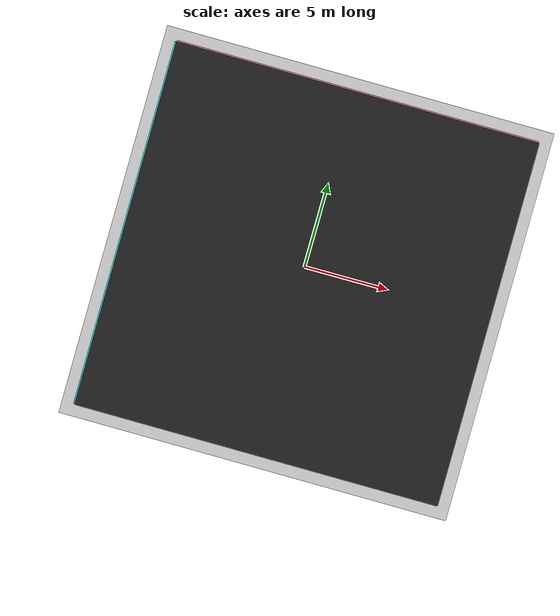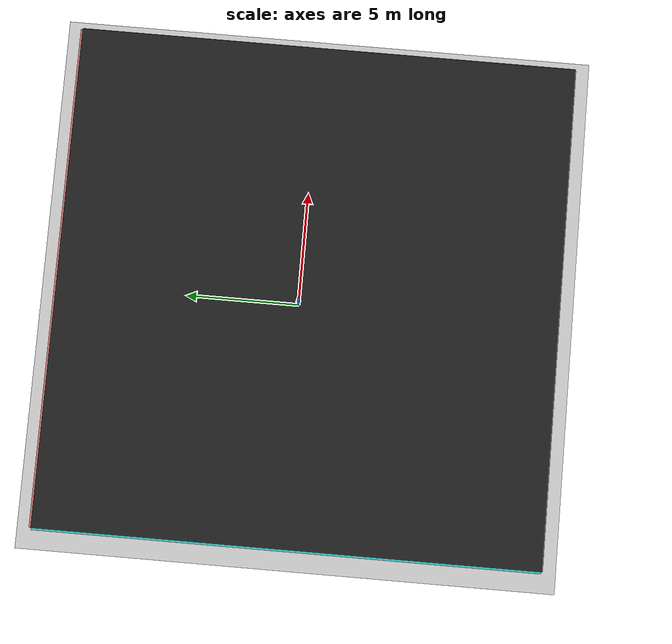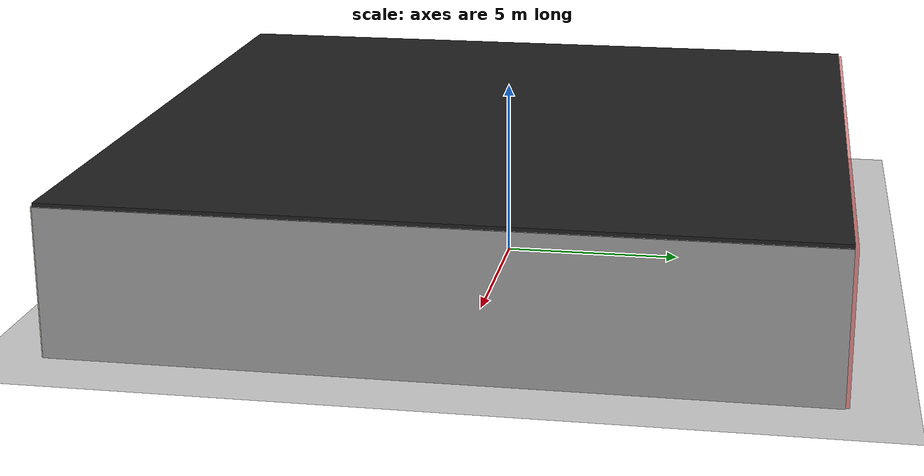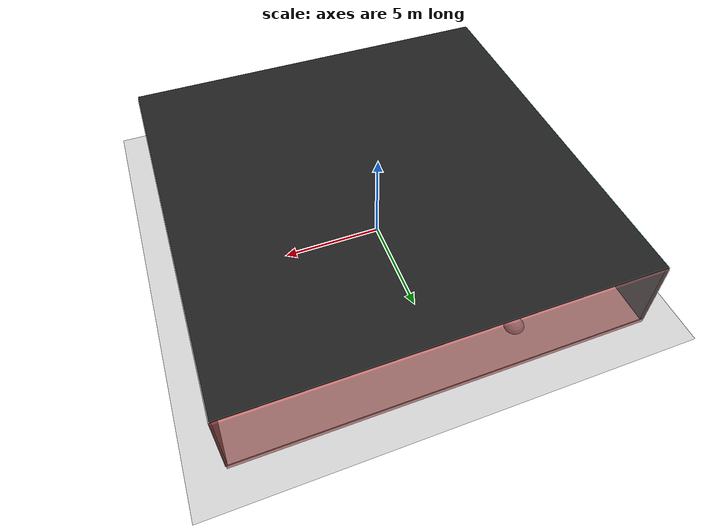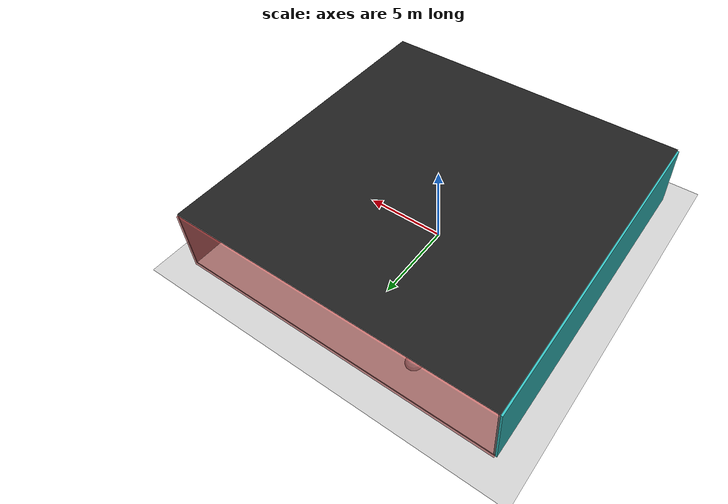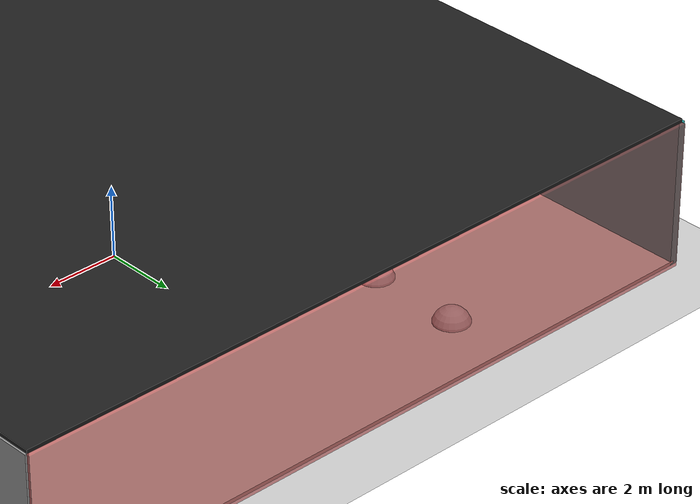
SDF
<sdf version="1.6">
 <world name="default">
  <light name="sun" type="directional">
   <pose>0 0 10 0 -0 0</pose>
   <diffuse>0.8 0.8 0.8 1</diffuse>
   <specular>0.2 0.2 0.2 1</specular>
   <attenuation>
    <range>1000</range>
    <constant>0.9</constant>
    <linear>0.01</linear>
    <quadratic>0.001</quadratic>
   </attenuation>
   <direction>-0.5 0.1 -0.9</direction>
  </light>
  <model name="ground_plane">
   <static>1</static>
   <link name="link">
    <collision name="collision">
     <geometry><plane><normal>0 0 1</normal><size>100 100</size></plane></geometry>
     <surface><friction><ode><mu>100</mu><mu2>50</mu2></ode></friction></surface>
    </collision>
    <visual name="visual">
     <cast_shadows>0</cast_shadows>
     <geometry><plane><normal>0 0 1</normal><size>100 100</size></plane></geometry>
     <material>
      <script><uri>file://media/materials/scripts/gazebo.material</uri><name>Gazebo/Grey</name></script>
     </material>
    </visual>
   </link>
  </model>
  <gravity>0 0 -9.8</gravity>
  <magnetic_field>6e-06 2.3e-05 -4.2e-05</magnetic_field>
  <atmosphere type="adiabatic"/>
  <physics default="0" name="default_physics" type="ode">
   <max_step_size>0.001</max_step_size>
   <real_time_factor>1</real_time_factor>
   <real_time_update_rate>1000</real_time_update_rate>
  </physics>
  <scene><ambient>0.4 0.4 0.4 1</ambient><background>0.7 0.7 0.7 1</background><shadows>1</shadows></scene>
  <spherical_coordinates>
   <surface_model>EARTH_WGS84</surface_model>
   <latitude_deg>0</latitude_deg>
   <longitude_deg>0</longitude_deg>
   <elevation>0</elevation>
   <heading_deg>0</heading_deg>
  </spherical_coordinates>
  <model name="four_walls">
   <static>1</static>
   <link name="Ceiling">
    <collision name="Ceiling_Collision"><geometry><box><size>20 20 0.1</size></box></geometry></collision>
    <visual name="Ceiling_Visual">
     <geometry><box><size>20 20 0.1</size></box></geometry>
     <material>
      <script><uri>file://media/materials/scripts/gazebo.material</uri><name>Gazebo/FlatBlack</name></script>
     </material>
    </visual>
    <pose>0 0 4.05 0 -0 0</pose>
   </link>
   <link name="Wall_South">
    <collision name="Wall_South_Collision">
     <geometry><box><size>20 0.1 4</size></box></geometry>
     <pose>0 0 2 0 -0 0</pose>
    </collision>
    <visual name="Wall_South_Visual">
     <pose>0 0 2 0 -0 0</pose>
     <geometry><box><size>20 0.1 4</size></box></geometry>
     <material>
      <script><uri>file://media/materials/scripts/gazebo.material</uri><name>Gazebo/PaintedWall</name></script>
     </material>
    </visual>
    <velocity_decay><linear>0</linear><angular>0</angular></velocity_decay>
    <pose>0 -10 0 0 -0 0</pose>
   </link>
   <link name="Wall_East">
    <collision name="Wall_21_Collision">
     <geometry><box><size>20 0.1 4</size></box></geometry>
     <pose>0 0 2 0 -0 0</pose>
    </collision>
    <visual name="Wall_21_Visual">
     <pose>0 0 2 0 -0 0</pose>
     <geometry><box><size>20 0.1 4</size></box></geometry>
     <material>
      <script><uri>file://media/materials/scripts/gazebo.material</uri><name>Gazebo/Grey</name></script>
     </material>
    </visual>
    <velocity_decay><linear>0</linear><angular>0</angular></velocity_decay>
    <pose>10 0 0 0 -0 1.5708</pose>
   </link>
   <link name="Wall_North">
    <collision name="Wall_22_Collision">
     <geometry><box><size>20 0.2 4</size></box></geometry>
     <pose>0 0 2 0 -0 0</pose>
    </collision>
    <visual name="Wall_22_Visual">
     <pose>0 0 2 0 -0 0</pose>
     <geometry><box><size>20 0.2 4</size></box></geometry>
     <material>
      <script><uri>file://media/materials/scripts/gazebo.material</uri><name>Gazebo/RedTransparent</name></script>
     </material>
    </visual>
    <velocity_decay><linear>0</linear><angular>0</angular></velocity_decay>
    <pose>0 10 0 0 -0 0</pose>
   </link>
   <link name="Wall_West">
    <collision name="Wall_23_Collision">
     <geometry><box><size>20 0.2 4</size></box></geometry>
     <pose>0 0 2 0 -0 0</pose>
    </collision>
    <visual name="Wall_23_Visual">
     <pose>0 0 2 0 -0 0</pose>
     <geometry><box><size>20 0.2 4</size></box></geometry>
     <material>
      <script><uri>file://media/materials/scripts/gazebo.material</uri><name>Gazebo/TurquoiseGlow</name></script>
     </material>
    </visual>
    <velocity_decay><linear>0</linear><angular>0</angular></velocity_decay>
    <pose>-10 0 0 0 0 -1.5708</pose>
   </link>
   <link name="Ground_link">
    <collision name="collision">
     <pose>0 0 0.05 0 -0 0</pose>
     <geometry><box><size>20 20 0.1</size></box></geometry>
    </collision>
    <visual name="visual">
     <pose>0 0 0.05 0 -0 0</pose>
     <geometry><box><size>20 20 0.1</size></box></geometry>
     <material>
      <script><uri>file://media/materials/scripts/gazebo.material</uri><name>Gazebo/CeilingTiled</name></script>
     </material>
    </visual>
   </link>
   <pose>0.205996 -0.361878 0 0 -0 0</pose>
  </model>
  <include>
   <uri>model://textured_shapes_sphere</uri>
   <pose>-6.97193296383 -6.87326361879 0 0 0 1.34923096209</pose>
  </include>
  <include>
   <uri>model://textured_shapes_box</uri>
   <pose>-3.93734829687 1.87662292664 0 0 0 2.67699474962</pose>
  </include>
  <include>
   <uri>model://textured_shapes_sphere</uri>
   <pose>-3.94147764941 5.19753557752 0 0 0 1.57091729133</pose>
  </include>
  <include>
   <uri>model://textured_shapes_sphere</uri>
   <pose>-3.9033966235 7.86000591878 0 0 0 2.22727800578</pose>
  </include>
  <include>
   <uri>model://textured_shapes_cylinder</uri>
   <pose>4.82545061709 2.17864616659 0 0 0 0.176087939696</pose>
  </include>
  <include>
   <uri>model://textured_shapes_sphere</uri>
   <pose>8.19498181819 -6.8518177699 0 0 0 1.27247114334</pose>
  </include>
  <include><uri>model://bookshelf</uri><pose>7.99205062158 2.06024005445 0 0 0 1.20172647905</pose></include>
 </world>
</sdf>

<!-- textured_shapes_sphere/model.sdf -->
<sdf version="1.6">
  <model name="textured_shapes">
    <pose>0 0 0.5 0 0 0</pose>
    <link name="sphere">
      <collision name="collision">
        <geometry>
          <sphere>
            <radius>0.5</radius>
          </sphere>
        </geometry>
      </collision>
      <visual name="visual">
        <geometry>
          <sphere>
            <radius>0.5</radius>
          </sphere>
        </geometry>
        <material>
          <script>
            <uri>model://textured_shapes/materials/scripts</uri>
            <uri>model://textured_shapes/materials/textures</uri>
            <name>TexturedShape/Squares</name>
          </script>
        </material>
      </visual>
    </link>
  </model>
</sdf>

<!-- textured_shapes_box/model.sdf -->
<sdf version="1.6">
  <model name="textured_shapes">
    <pose>0 0 0.5 0 0 0</pose>
    <link name="box">
      <pose>0 -1.5 0 0 0 0</pose>
      <collision name="collision">
        <geometry>
          <box>
            <size>1 1 1</size>
          </box>
        </geometry>
      </collision>
      <visual name="visual">
        <geometry>
          <box>
            <size>1 1 1</size>
          </box>
        </geometry>
        <material>
          <script>
            <uri>model://textured_shapes/materials/scripts</uri>
            <uri>model://textured_shapes/materials/textures</uri>
            <name>TexturedShape/Squares</name>
          </script>
        </material>
      </visual>
    </link>
  </model>
</sdf>

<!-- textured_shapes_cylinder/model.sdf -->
<sdf version="1.6">
  <model name="textured_shapes">
    <pose>0 0 0.5 0 0 0</pose>
    <link name="cylinder">
      <pose>0 1.5 0 0 0 0</pose>
      <collision name="collision">
        <geometry>
          <cylinder>
            <radius>0.5</radius>
            <length>1</length>
          </cylinder>
        </geometry>
      </collision>
      <visual name="visual">
        <geometry>
          <cylinder>
            <radius>0.5</radius>
            <length>1</length>
          </cylinder>
        </geometry>
        <material>
          <script>
            <uri>model://textured_shapes/materials/scripts</uri>
            <uri>model://textured_shapes/materials/textures</uri>
            <name>TexturedShape/Squares</name>
          </script>
        </material>
      </visual>
    </link>
  </model>
</sdf>

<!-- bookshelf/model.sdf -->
<sdf version="1.5">
  <model name="bookshelf">
    <static>true</static>
    <pose>0 0 0 0 0</pose>
    <link name="link">
      <pose>0 0 0 0 0 -1.57</pose>
      <inertial>
        <mass>1.0</mass>
      </inertial>
      <collision name="back">
        <pose>0 0.005 0.6 0 0 0</pose>
        <geometry>
          <box>
            <size>0.9 0.01 1.2</size>
          </box>
        </geometry>
      </collision>
      <visual name="visual1">
        <pose>0 0.005 0.6 0 0 0</pose>
        <geometry>
          <box>
            <size>0.9 0.01 1.2</size>
          </box>
        </geometry>
        <material>
          <script>
            <uri>file://media/materials/scripts/gazebo.material</uri>
            <name>Gazebo/Wood</name>
          </script>
        </material>
      </visual>
      <collision name="left_side">
        <pose>0.45 -0.195 0.6 0 0 0</pose>
        <geometry>
          <box>
            <size>0.02 0.4 1.2</size>
          </box>
        </geometry>
      </collision>
      <visual name="visual2">
        <pose>0.45 -0.195 0.6 0 0 0</pose>
        <geometry>
          <box>
            <size>0.02 0.4 1.2</size>
          </box>
        </geometry>
        <material>
          <script>
            <uri>file://media/materials/scripts/gazebo.material</uri>
            <name>Gazebo/Wood</name>
          </script>
        </material>
      </visual>
      <collision name="right_side">
        <pose>-0.45 -0.195 0.6 0 0 0</pose>
        <geometry>
          <box>
            <size>0.02 0.4 1.2</size>
          </box>
        </geometry>
      </collision>
      <visual name="visual3">
        <pose>-0.45 -0.195 0.6 0 0 0</pose>
        <geometry>
          <box>
            <size>0.02 0.4 1.2</size>
          </box>
        </geometry>
        <material>
          <script>
            <uri>file://media/materials/scripts/gazebo.material</uri>
            <name>Gazebo/Wood</name>
          </script>
        </material>
      </visual>
      <collision name="bottom">
        <pose>0 -0.195 0.03 0 0 0</pose>
        <geometry>
          <box>
            <size>0.88 0.4 0.06</size>
          </box>
        </geometry>
      </collision>
      <visual name="visual4">
        <pose>0 -0.195 0.03 0 0 0</pose>
        <geometry>
          <box>
            <size>0.88 0.4 0.06</size>
          </box>
        </geometry>
        <material>
          <script>
            <uri>file://media/materials/scripts/gazebo.material</uri>
            <name>Gazebo/Wood</name>
          </script>
        </material>
      </visual>
      <collision name="top">
        <pose>0 -0.195 1.19 0 0 0</pose>
        <geometry>
          <box>
            <size>0.88 0.4 0.02</size>
          </box>
        </geometry>
      </collision>
      <visual name="visual5">
        <pose>0 -0.195 1.19 0 0 0</pose>
        <geometry>
          <box>
            <size>0.88 0.4 0.02</size>
          </box>
        </geometry>
        <material>
          <script>
            <uri>file://media/materials/scripts/gazebo.material</uri>
            <name>Gazebo/Wood</name>
          </script>
        </material>
      </visual>
      <collision name="low_shelf">
        <pose>0 -0.195 0.43 0 0 0</pose>
        <geometry>
          <box>
            <size>0.88 0.4 0.02</size>
          </box>
        </geometry>
      </collision>
      <visual name="visual6">
        <pose>0 -0.195 0.43 0 0 0</pose>
        <geometry>
          <box>
            <size>0.88 0.4 0.02</size>
          </box>
        </geometry>
        <material>
          <script>
            <uri>file://media/materials/scripts/gazebo.material</uri>
            <name>Gazebo/Wood</name>
          </script>
        </material>
      </visual>
      <collision name="high_shelf">
        <pose>0 -0.195 0.8 0 0 0</pose>
        <geometry>
          <box>
            <size>0.88 0.4 0.02</size>
          </box>
        </geometry>
      </collision>
      <visual name="visual7">
        <pose>0 -0.195 0.8 0 0 0</pose>
        <geometry>
          <box>
            <size>0.88 0.4 0.02</size>
          </box>
        </geometry>
        <material>
          <script>
            <uri>file://media/materials/scripts/gazebo.material</uri>
            <name>Gazebo/Wood</name>
          </script>
        </material>
      </visual>
    </link>
  </model>
</sdf>
